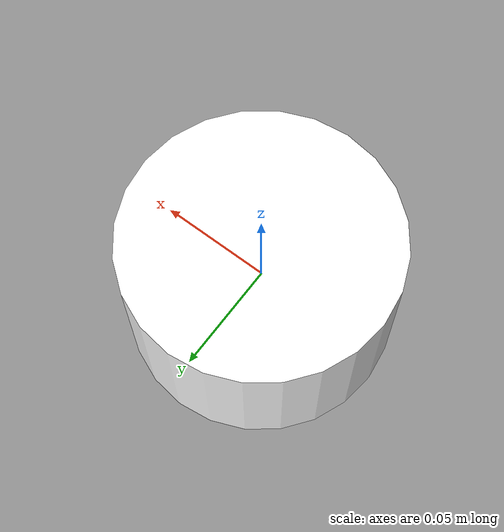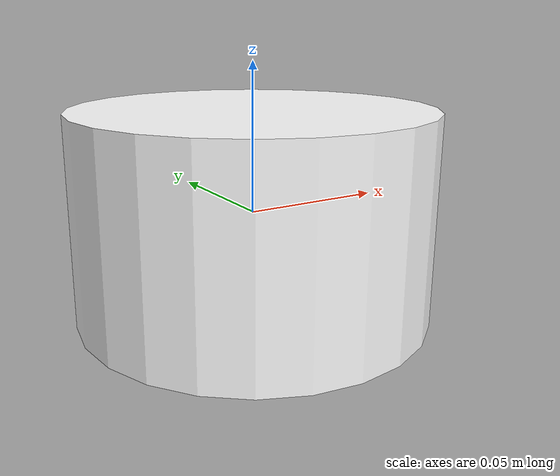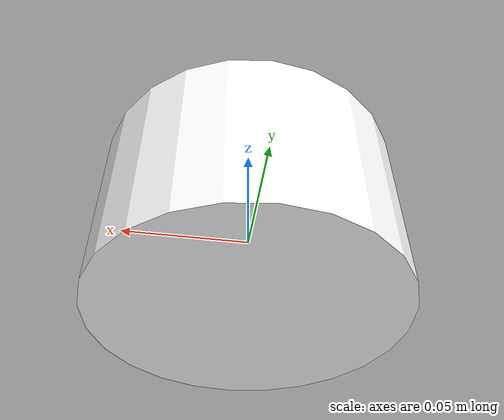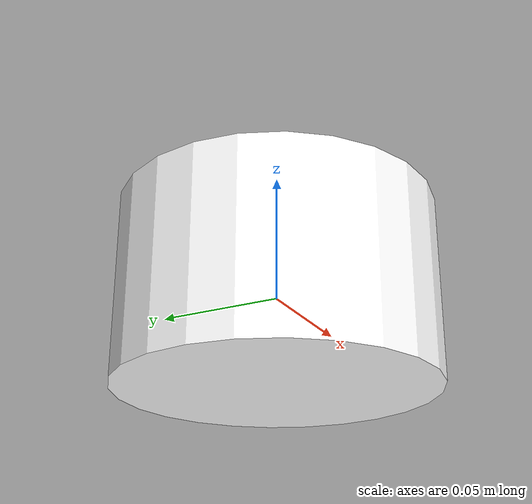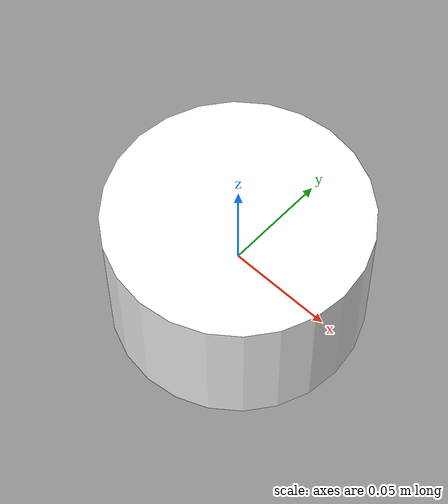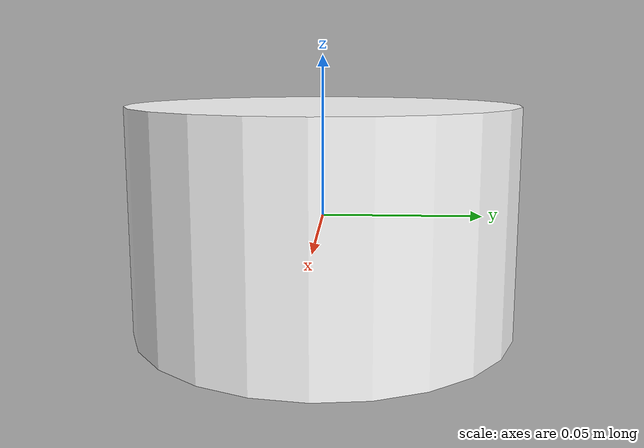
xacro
<?xml version="1.0"?>
<robot xmlns:xacro="http://www.ros.org/wiki/xacro">
  <xacro:include filename="inertial_macros.xacro"/>
  <xacro:include filename="materials.xacro"/>

  <xacro:property name="chassis_radius" value="0.06"/>
  <xacro:property name="chassis_height" value="0.07"/>

  <link name="base_link"></link>
  <link name="footprint_link"></link>
  <link name="chassis_link">
    <visual>
      <geometry>
        <cylinder radius="${chassis_radius}" length="${chassis_height}"/>
      </geometry>
      <material name="white"/>
    </visual>
    <collision>
      <geometry>
        <cylinder radius="${chassis_radius}" length="${chassis_height}"/>
      </geometry>
    </collision>
    <xacro:inertial_cylinder mass="0.1" radius="${chassis_radius}" length="${chassis_height}">
      <origin xyz="0 0 0" rpy="0 0 0"/>
    </xacro:inertial_cylinder>
  </link>

  <joint name="footprint_joint" type="fixed">
    <parent link="base_link"/>
    <child link="footprint_link"/>
    <origin xyz="0.0 0.0 -${chassis_height/2}"/>
  </joint>

  <joint name="chassis_joint" type="fixed">
    <parent link="base_link"/>
    <child link="chassis_link"/>
    <origin xyz="0.0 0.0 0.0"/>
  </joint>

  <gazebo reference="chassis_link">
    <material>Gazebo/Orange</material>
  </gazebo>
</robot>

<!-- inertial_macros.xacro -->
<robot xmlns:xacro="http://www.ros.org/wiki/xacro" >

    <!-- Specify some standard inertial calculations https://en.wikipedia.org/wiki/List_of_moments_of_inertia -->
    <!-- These make use of xacro's mathematical functionality -->

    <xacro:macro name="inertial_sphere" params="mass radius *origin">
        <inertial>
            <xacro:insert_block name="origin"/>
            <mass value="${mass}" />
            <inertia ixx="${(2/5) * mass * (radius*radius)}" ixy="0.0" ixz="0.0"
                    iyy="${(2/5) * mass * (radius*radius)}" iyz="0.0"
                    izz="${(2/5) * mass * (radius*radius)}" />
        </inertial>
    </xacro:macro>

    <xacro:macro name="inertial_box" params="mass x y z *origin">
        <inertial>
            <xacro:insert_block name="origin"/>
            <mass value="${mass}" />
            <inertia ixx="${(1/12) * mass * (y*y+z*z)}" ixy="0.0" ixz="0.0"
                    iyy="${(1/12) * mass * (x*x+z*z)}" iyz="0.0"
                    izz="${(1/12) * mass * (x*x+y*y)}" />
        </inertial>
    </xacro:macro>

    <xacro:macro name="inertial_cylinder" params="mass length radius *origin">
        <inertial>
            <xacro:insert_block name="origin"/>
            <mass value="${mass}" />
            <inertia ixx="${(1/12) * mass * (3*radius*radius + length*length)}" ixy="0.0" ixz="0.0"
                    iyy="${(1/12) * mass * (3*radius*radius + length*length)}" iyz="0.0"
                    izz="${(1/2) * mass * (radius*radius)}" />
        </inertial>
    </xacro:macro>
</robot>

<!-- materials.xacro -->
<robot xmlns:xacro="http://www.ros.org/wiki/xacro">

    <material name="white">
        <color rgba="1.0 1.0 1.0 1.0"/>
    </material>

    <material name="red">
        <color rgba="1.0 0.0 0.0 1.0"/>
    </material>

    <material name="green">
        <color rgba="0.0 1.0 0.0 1.0"/>
    </material>

    <material name="blue">
        <color rgba="0.0 0.0 1.0 1.0"/>
    </material>

    <material name="black">
        <color rgba="0.0 0.0 1.0 1.0"/>
    </material>

</robot>
